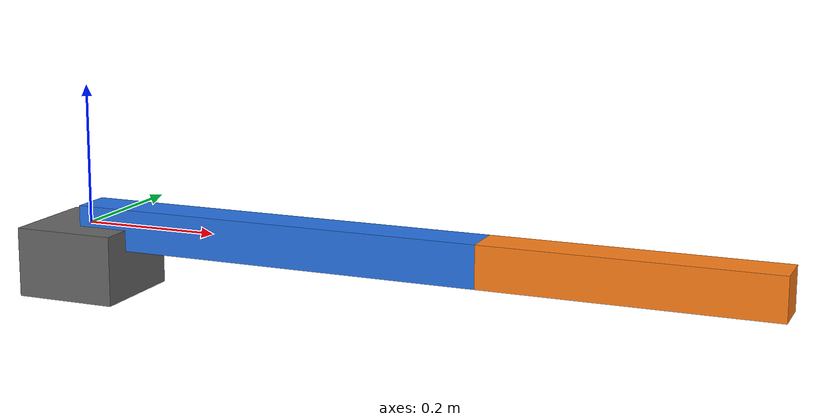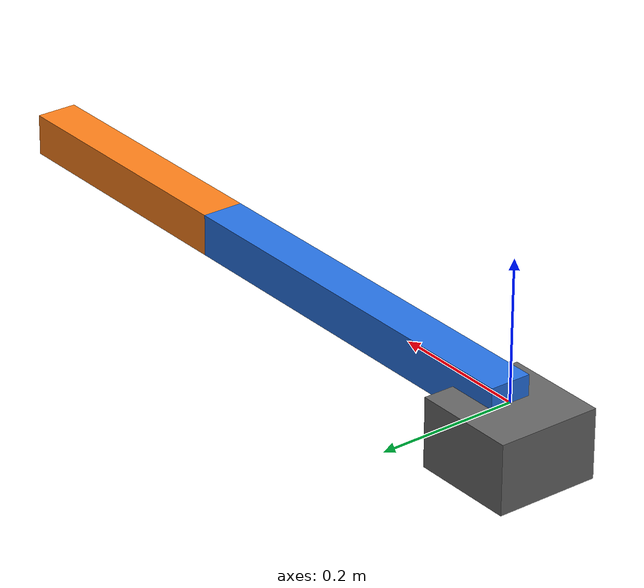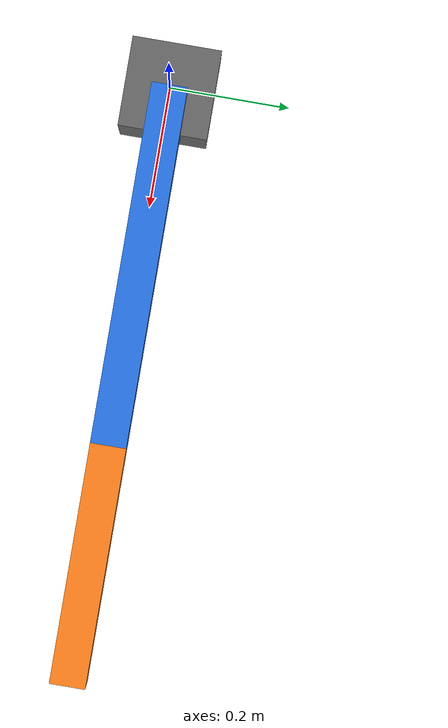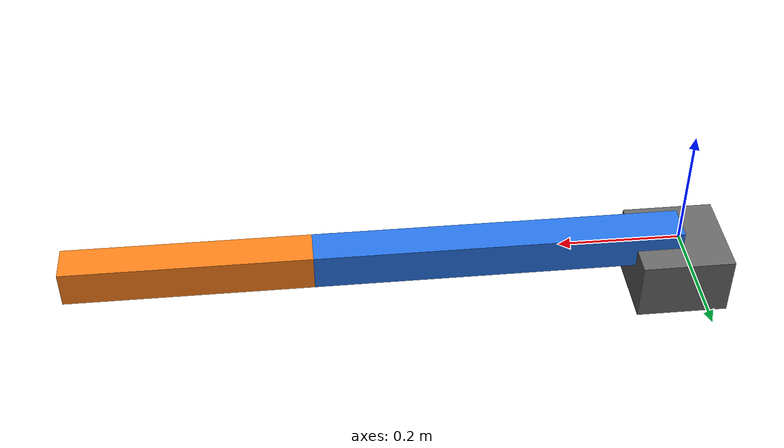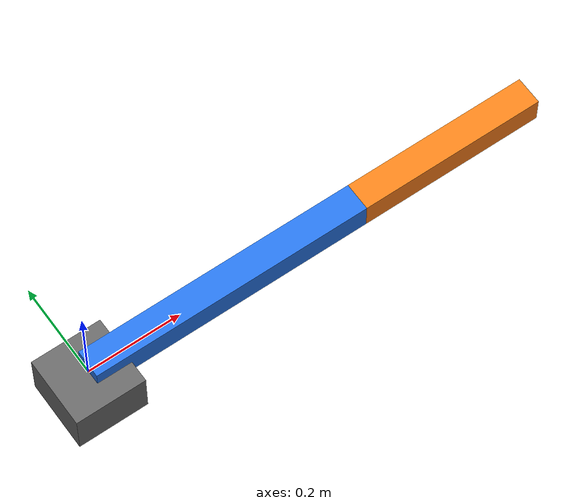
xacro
<?xml version="1.0"?>
<robot name="teaching_arm" xmlns:xacro="http://www.ros.org/wiki/xacro">
  <!-- SI units: meters, kilograms, radians. Positive Y rotation bends toward -Z. -->
  <xacro:arg name="length1" default="0.6"/>
  <xacro:arg name="length2" default="0.4"/>
  <xacro:property name="l1" value="$(arg length1)"/>
  <xacro:property name="l2" value="$(arg length2)"/>
  <xacro:property name="width" value="0.06"/>
  <material name="blue"><color rgba="0.15 0.45 0.9 1"/></material>
  <material name="orange"><color rgba="1 0.5 0.1 1"/></material>
  <material name="gray"><color rgba="0.4 0.4 0.4 1"/></material>

  <!-- A box's inertia is about its center of mass, not the joint origin. -->
  <xacro:macro name="arm_link" params="name length mass color">
    <link name="${name}">
      <visual>
        <origin xyz="${length / 2} 0 0"/>
        <geometry><box size="${length} ${width} ${width}"/></geometry>
        <material name="${color}"/>
      </visual>
      <collision>
        <origin xyz="${length / 2} 0 0"/>
        <geometry><box size="${length} ${width} ${width}"/></geometry>
      </collision>
      <inertial>
        <origin xyz="${length / 2} 0 0"/>
        <mass value="${mass}"/>
        <inertia ixx="${mass * (width**2 + width**2) / 12}" ixy="0" ixz="0"
                 iyy="${mass * (length**2 + width**2) / 12}" iyz="0"
                 izz="${mass * (length**2 + width**2) / 12}"/>
      </inertial>
    </link>
  </xacro:macro>

  <!-- The root is fixed for Pinocchio; it has no free-floating base coordinates. -->
  <link name="base_link">
    <visual><origin xyz="0 0 -0.05"/>
      <geometry><box size="0.15 0.15 0.1"/></geometry><material name="gray"/>
    </visual>
  </link>
  <xacro:arm_link name="link1" length="${l1}" mass="1.0" color="blue"/>
  <xacro:arm_link name="link2" length="${l2}" mass="0.6" color="orange"/>
  <link name="tool0"/>
  <joint name="shoulder_joint" type="revolute">
    <parent link="base_link"/><child link="link1"/>
    <origin xyz="0 0 0"/><axis xyz="0 1 0"/>
    <limit lower="-3.141592653589793" upper="3.141592653589793" effort="20" velocity="2"/>
  </joint>
  <joint name="elbow_joint" type="revolute">
    <parent link="link1"/><child link="link2"/>
    <origin xyz="${l1} 0 0"/><axis xyz="0 1 0"/>
    <limit lower="-3.141592653589793" upper="3.141592653589793" effort="10" velocity="2"/>
  </joint>
  <joint name="tool_joint" type="fixed">
    <parent link="link2"/><child link="tool0"/><origin xyz="${l2} 0 0"/>
  </joint>
</robot>
